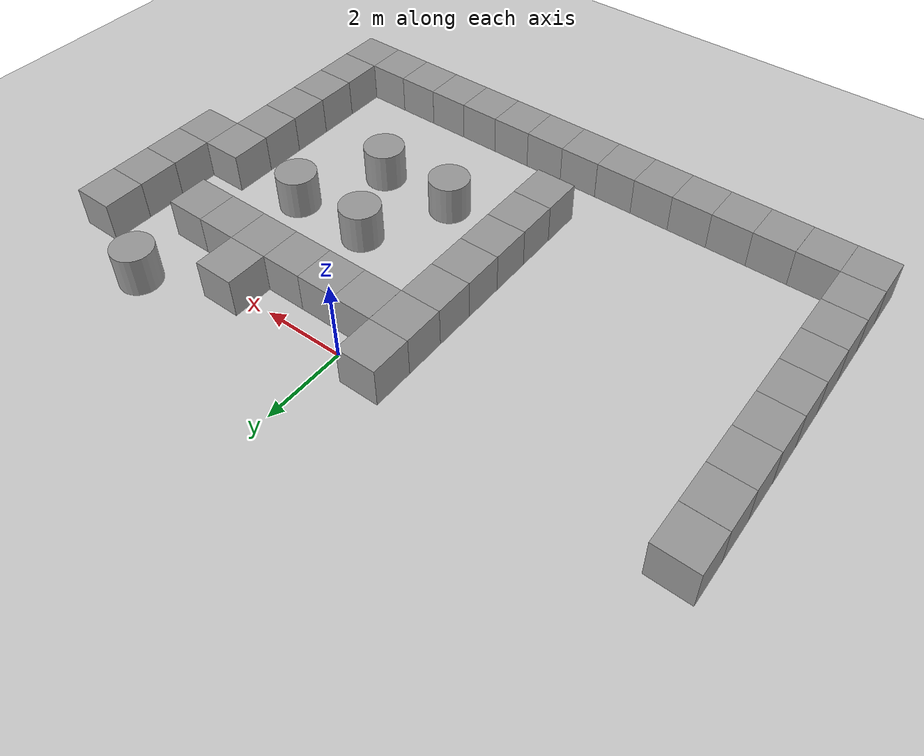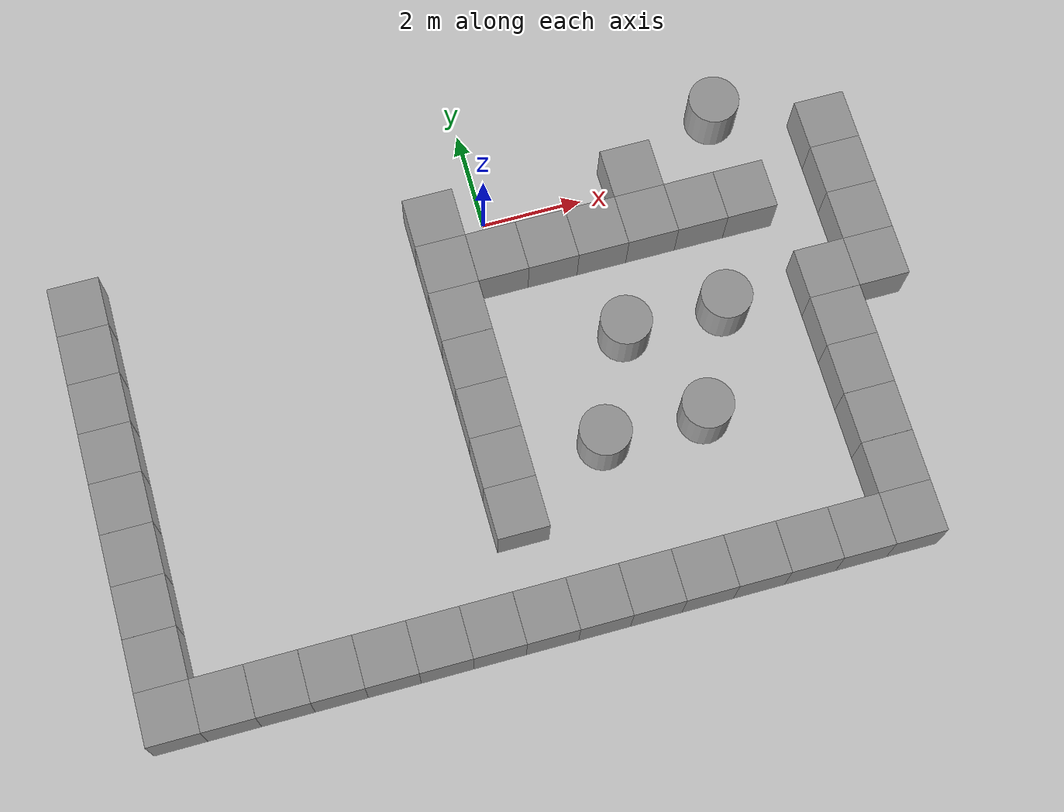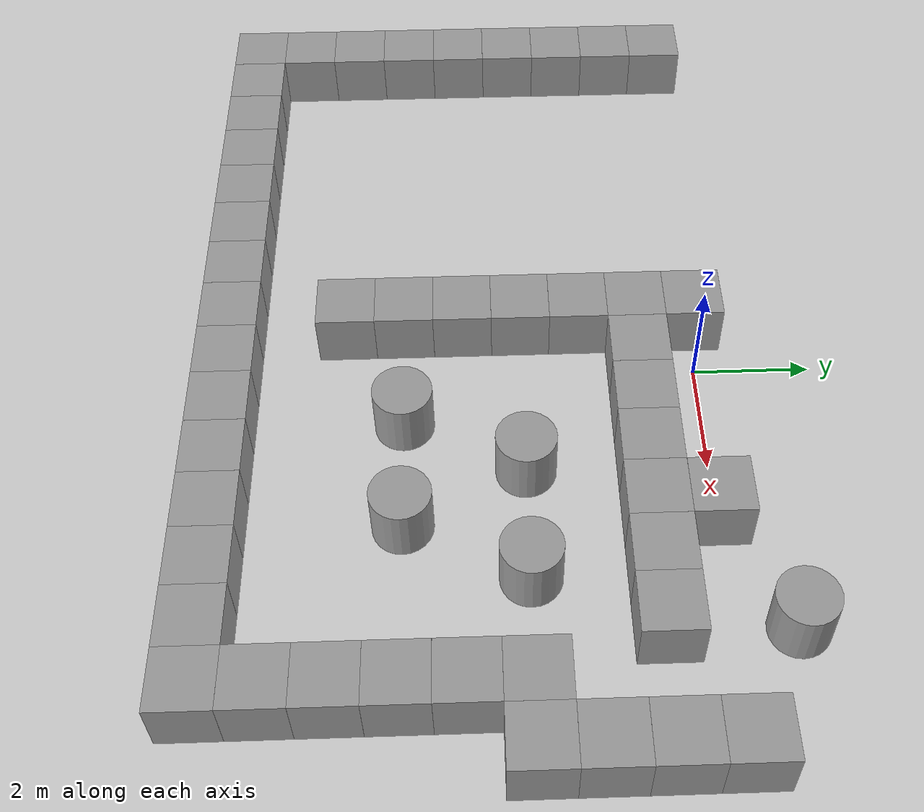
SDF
<sdf version="1.4">
 <world name="default">
  <model name="ground_plane">
   <static>1</static>
   <link name="link">
    <collision name="collision">
     <geometry><plane><normal>0 0 1</normal><size>100 100</size></plane></geometry>
     <surface><friction><ode><mu>100</mu><mu2>50</mu2></ode></friction></surface>
    </collision>
    <visual name="visual">
     <cast_shadows>0</cast_shadows>
     <geometry><plane><normal>0 0 1</normal><size>100 100</size></plane></geometry>
     <material>
      <script><uri>file://media/materials/scripts/gazebo.material</uri><name>Gazebo/Grey</name></script>
     </material>
    </visual>
    <velocity_decay><linear>0</linear><angular>0</angular></velocity_decay>
   </link>
  </model>
  <model name="unit_box_1">
   <pose>5e-06 -0.999881 0.5 0 0 -3.1e-05</pose>
   <link name="link">
    <inertial>
     <mass>1</mass>
     <inertia><ixx>1</ixx><ixy>0</ixy><ixz>0</ixz><iyy>1</iyy><iyz>0</iyz><izz>1</izz></inertia>
    </inertial>
    <collision name="collision"><geometry><box><size>1 1 1</size></box></geometry></collision>
    <visual name="visual">
     <geometry><box><size>1 1 1</size></box></geometry>
     <material>
      <script><uri>file://media/materials/scripts/gazebo.material</uri><name>Gazebo/Grey</name></script>
     </material>
    </visual>
    <velocity_decay><linear>0</linear><angular>0</angular></velocity_decay>
   </link>
   <static>0</static>
  </model>
  <model name="unit_box_2">
   <pose>1.00013 -1.00033 0.5 0 -0 3.1e-05</pose>
   <link name="link">
    <inertial>
     <mass>1</mass>
     <inertia><ixx>1</ixx><ixy>0</ixy><ixz>0</ixz><iyy>1</iyy><iyz>0</iyz><izz>1</izz></inertia>
    </inertial>
    <collision name="collision"><geometry><box><size>1 1 1</size></box></geometry></collision>
    <visual name="visual">
     <geometry><box><size>1 1 1</size></box></geometry>
     <material>
      <script><uri>file://media/materials/scripts/gazebo.material</uri><name>Gazebo/Grey</name></script>
     </material>
    </visual>
    <velocity_decay><linear>0</linear><angular>0</angular></velocity_decay>
   </link>
   <static>0</static>
  </model>
  <model name="unit_box_3">
   <pose>2.00013 -0.999965 0.5 0 -0 2.2e-05</pose>
   <link name="link">
    <inertial>
     <mass>1</mass>
     <inertia><ixx>1</ixx><ixy>0</ixy><ixz>0</ixz><iyy>1</iyy><iyz>0</iyz><izz>1</izz></inertia>
    </inertial>
    <collision name="collision"><geometry><box><size>1 1 1</size></box></geometry></collision>
    <visual name="visual">
     <geometry><box><size>1 1 1</size></box></geometry>
     <material>
      <script><uri>file://media/materials/scripts/gazebo.material</uri><name>Gazebo/Grey</name></script>
     </material>
    </visual>
    <velocity_decay><linear>0</linear><angular>0</angular></velocity_decay>
   </link>
   <static>0</static>
  </model>
  <model name="unit_box_4">
   <pose>3.00033 -1.00003 0.5 0 -0 0.000257</pose>
   <link name="link">
    <inertial>
     <mass>1</mass>
     <inertia><ixx>1</ixx><ixy>0</ixy><ixz>0</ixz><iyy>1</iyy><iyz>0</iyz><izz>1</izz></inertia>
    </inertial>
    <collision name="collision"><geometry><box><size>1 1 1</size></box></geometry></collision>
    <visual name="visual">
     <geometry><box><size>1 1 1</size></box></geometry>
     <material>
      <script><uri>file://media/materials/scripts/gazebo.material</uri><name>Gazebo/Grey</name></script>
     </material>
    </visual>
    <velocity_decay><linear>0</linear><angular>0</angular></velocity_decay>
   </link>
   <static>0</static>
  </model>
  <model name="unit_box_5">
   <pose>3.00021 6.2e-05 0.5 0 -0 0.000131</pose>
   <link name="link">
    <inertial>
     <mass>1</mass>
     <inertia><ixx>1</ixx><ixy>0</ixy><ixz>0</ixz><iyy>1</iyy><iyz>0</iyz><izz>1</izz></inertia>
    </inertial>
    <collision name="collision"><geometry><box><size>1 1 1</size></box></geometry></collision>
    <visual name="visual">
     <geometry><box><size>1 1 1</size></box></geometry>
     <material>
      <script><uri>file://media/materials/scripts/gazebo.material</uri><name>Gazebo/Grey</name></script>
     </material>
    </visual>
    <velocity_decay><linear>0</linear><angular>0</angular></velocity_decay>
   </link>
   <static>0</static>
  </model>
  <model name="unit_box_14">
   <pose>7.00006 0.000151 0.5 0 -0 1e-06</pose>
   <link name="link">
    <inertial>
     <mass>1</mass>
     <inertia><ixx>1</ixx><ixy>0</ixy><ixz>0</ixz><iyy>1</iyy><iyz>0</iyz><izz>1</izz></inertia>
    </inertial>
    <collision name="collision"><geometry><box><size>1 1 1</size></box></geometry></collision>
    <visual name="visual">
     <geometry><box><size>1 1 1</size></box></geometry>
     <material>
      <script><uri>file://media/materials/scripts/gazebo.material</uri><name>Gazebo/Grey</name></script>
     </material>
    </visual>
    <velocity_decay><linear>0</linear><angular>0</angular></velocity_decay>
   </link>
   <static>0</static>
  </model>
  <model name="unit_cylinder_1">
   <pose>5 1 0.49912 -0 -0 -0</pose>
   <link name="link">
    <inertial>
     <mass>1</mass>
     <inertia><ixx>1</ixx><ixy>0</ixy><ixz>0</ixz><iyy>1</iyy><iyz>0</iyz><izz>1</izz></inertia>
    </inertial>
    <collision name="collision">
     <geometry><cylinder><radius>0.5</radius><length>1</length></cylinder></geometry>
    </collision>
    <visual name="visual">
     <geometry><cylinder><radius>0.5</radius><length>1</length></cylinder></geometry>
     <material>
      <script><uri>file://media/materials/scripts/gazebo.material</uri><name>Gazebo/Grey</name></script>
     </material>
    </visual>
    <velocity_decay><linear>0</linear><angular>0</angular></velocity_decay>
   </link>
   <static>0</static>
  </model>
  <model name="unit_box_15">
   <pose>4.00045 -0.999873 0.5 0 -0 6e-06</pose>
   <link name="link">
    <inertial>
     <mass>1</mass>
     <inertia><ixx>1</ixx><ixy>0</ixy><ixz>0</ixz><iyy>1</iyy><iyz>0</iyz><izz>1</izz></inertia>
    </inertial>
    <collision name="collision"><geometry><box><size>1 1 1</size></box></geometry></collision>
    <visual name="visual">
     <geometry><box><size>1 1 1</size></box></geometry>
     <material>
      <script><uri>file://media/materials/scripts/gazebo.material</uri><name>Gazebo/Grey</name></script>
     </material>
    </visual>
    <velocity_decay><linear>0</linear><angular>0</angular></velocity_decay>
   </link>
   <static>0</static>
  </model>
  <model name="unit_box_16">
   <pose>5.00046 -1.00003 0.5 0 -0 1.5e-05</pose>
   <link name="link">
    <inertial>
     <mass>1</mass>
     <inertia><ixx>1</ixx><ixy>0</ixy><ixz>0</ixz><iyy>1</iyy><iyz>0</iyz><izz>1</izz></inertia>
    </inertial>
    <collision name="collision"><geometry><box><size>1 1 1</size></box></geometry></collision>
    <visual name="visual">
     <geometry><box><size>1 1 1</size></box></geometry>
     <material>
      <script><uri>file://media/materials/scripts/gazebo.material</uri><name>Gazebo/Grey</name></script>
     </material>
    </visual>
    <velocity_decay><linear>0</linear><angular>0</angular></velocity_decay>
   </link>
   <static>0</static>
  </model>
  <model name="unit_box_17">
   <pose>7.00035 -0.999923 0.5 0 -0 9.8e-05</pose>
   <link name="link">
    <inertial>
     <mass>1</mass>
     <inertia><ixx>1</ixx><ixy>0</ixy><ixz>0</ixz><iyy>1</iyy><iyz>0</iyz><izz>1</izz></inertia>
    </inertial>
    <collision name="collision"><geometry><box><size>1 1 1</size></box></geometry></collision>
    <visual name="visual">
     <geometry><box><size>1 1 1</size></box></geometry>
     <material>
      <script><uri>file://media/materials/scripts/gazebo.material</uri><name>Gazebo/Grey</name></script>
     </material>
    </visual>
    <velocity_decay><linear>0</linear><angular>0</angular></velocity_decay>
   </link>
   <static>0</static>
  </model>
  <model name="unit_box_23">
   <pose>-1.00047 9.5e-05 0.5 0 -0 -4.2e-05</pose>
   <link name="link">
    <inertial>
     <mass>1</mass>
     <inertia><ixx>1</ixx><ixy>0</ixy><ixz>0</ixz><iyy>1</iyy><iyz>0</iyz><izz>1</izz></inertia>
    </inertial>
    <collision name="collision"><geometry><box><size>1 1 1</size></box></geometry></collision>
    <visual name="visual">
     <geometry><box><size>1 1 1</size></box></geometry>
     <material>
      <script><uri>file://media/materials/scripts/gazebo.material</uri><name>Gazebo/Grey</name></script>
     </material>
    </visual>
    <velocity_decay><linear>0</linear><angular>0</angular></velocity_decay>
   </link>
   <static>0</static>
  </model>
  <model name="unit_box_24">
   <pose>-1.00037 -0.999916 0.5 -0 -0 -4.6e-05</pose>
   <link name="link">
    <inertial>
     <mass>1</mass>
     <inertia><ixx>1</ixx><ixy>0</ixy><ixz>0</ixz><iyy>1</iyy><iyz>0</iyz><izz>1</izz></inertia>
    </inertial>
    <collision name="collision"><geometry><box><size>1 1 1</size></box></geometry></collision>
    <visual name="visual">
     <geometry><box><size>1 1 1</size></box></geometry>
     <material>
      <script><uri>file://media/materials/scripts/gazebo.material</uri><name>Gazebo/Grey</name></script>
     </material>
    </visual>
    <velocity_decay><linear>0</linear><angular>0</angular></velocity_decay>
   </link>
   <static>0</static>
  </model>
  <model name="unit_box_44">
   <pose>6.99986 -1.99996 0.5 0 -0 0.000172</pose>
   <link name="link">
    <inertial>
     <mass>1</mass>
     <inertia><ixx>1</ixx><ixy>0</ixy><ixz>0</ixz><iyy>1</iyy><iyz>0</iyz><izz>1</izz></inertia>
    </inertial>
    <collision name="collision"><geometry><box><size>1 1 1</size></box></geometry></collision>
    <visual name="visual">
     <geometry><box><size>1 1 1</size></box></geometry>
     <material>
      <script><uri>file://media/materials/scripts/gazebo.material</uri><name>Gazebo/Grey</name></script>
     </material>
    </visual>
    <velocity_decay><linear>0</linear><angular>0</angular></velocity_decay>
   </link>
   <static>0</static>
  </model>
  <model name="unit_box_45">
   <pose>7.00008 -3.00005 0.5 0 -0 8e-05</pose>
   <link name="link">
    <inertial>
     <mass>1</mass>
     <inertia><ixx>1</ixx><ixy>0</ixy><ixz>0</ixz><iyy>1</iyy><iyz>0</iyz><izz>1</izz></inertia>
    </inertial>
    <collision name="collision"><geometry><box><size>1 1 1</size></box></geometry></collision>
    <visual name="visual">
     <geometry><box><size>1 1 1</size></box></geometry>
     <material>
      <script><uri>file://media/materials/scripts/gazebo.material</uri><name>Gazebo/Grey</name></script>
     </material>
    </visual>
    <velocity_decay><linear>0</linear><angular>0</angular></velocity_decay>
   </link>
   <static>0</static>
  </model>
  <model name="unit_box_59">
   <pose>5.99996 -2.99948 0.5 0 -0 8.8e-05</pose>
   <link name="link">
    <inertial>
     <mass>1</mass>
     <inertia><ixx>1</ixx><ixy>0</ixy><ixz>0</ixz><iyy>1</iyy><iyz>0</iyz><izz>1</izz></inertia>
    </inertial>
    <collision name="collision"><geometry><box><size>1 1 1</size></box></geometry></collision>
    <visual name="visual">
     <geometry><box><size>1 1 1</size></box></geometry>
     <material>
      <script><uri>file://media/materials/scripts/gazebo.material</uri><name>Gazebo/Grey</name></script>
     </material>
    </visual>
    <velocity_decay><linear>0</linear><angular>0</angular></velocity_decay>
   </link>
   <static>0</static>
  </model>
  <model name="unit_box_60">
   <pose>5.99974 -3.99959 0.5 -0 -0 -0.000124</pose>
   <link name="link">
    <inertial>
     <mass>1</mass>
     <inertia><ixx>1</ixx><ixy>0</ixy><ixz>0</ixz><iyy>1</iyy><iyz>0</iyz><izz>1</izz></inertia>
    </inertial>
    <collision name="collision"><geometry><box><size>1 1 1</size></box></geometry></collision>
    <visual name="visual">
     <geometry><box><size>1 1 1</size></box></geometry>
     <material>
      <script><uri>file://media/materials/scripts/gazebo.material</uri><name>Gazebo/Grey</name></script>
     </material>
    </visual>
    <velocity_decay><linear>0</linear><angular>0</angular></velocity_decay>
   </link>
   <static>0</static>
  </model>
  <model name="unit_box_61">
   <pose>6.00018 -4.99974 0.5 0 -0 -0.000116</pose>
   <link name="link">
    <inertial>
     <mass>1</mass>
     <inertia><ixx>1</ixx><ixy>0</ixy><ixz>0</ixz><iyy>1</iyy><iyz>0</iyz><izz>1</izz></inertia>
    </inertial>
    <collision name="collision"><geometry><box><size>1 1 1</size></box></geometry></collision>
    <visual name="visual">
     <geometry><box><size>1 1 1</size></box></geometry>
     <material>
      <script><uri>file://media/materials/scripts/gazebo.material</uri><name>Gazebo/Grey</name></script>
     </material>
    </visual>
    <velocity_decay><linear>0</linear><angular>0</angular></velocity_decay>
   </link>
   <static>0</static>
  </model>
  <model name="unit_box_62">
   <pose>6.00048 -5.99991 0.5 0 -0 0.000214</pose>
   <link name="link">
    <inertial>
     <mass>1</mass>
     <inertia><ixx>1</ixx><ixy>0</ixy><ixz>0</ixz><iyy>1</iyy><iyz>0</iyz><izz>1</izz></inertia>
    </inertial>
    <collision name="collision"><geometry><box><size>1 1 1</size></box></geometry></collision>
    <visual name="visual">
     <geometry><box><size>1 1 1</size></box></geometry>
     <material>
      <script><uri>file://media/materials/scripts/gazebo.material</uri><name>Gazebo/Grey</name></script>
     </material>
    </visual>
    <velocity_decay><linear>0</linear><angular>0</angular></velocity_decay>
   </link>
   <static>0</static>
  </model>
  <model name="unit_box_63">
   <pose>6.00055 -7.00006 0.5 0 -0 7e-05</pose>
   <link name="link">
    <inertial>
     <mass>1</mass>
     <inertia><ixx>1</ixx><ixy>0</ixy><ixz>0</ixz><iyy>1</iyy><iyz>0</iyz><izz>1</izz></inertia>
    </inertial>
    <collision name="collision"><geometry><box><size>1 1 1</size></box></geometry></collision>
    <visual name="visual">
     <geometry><box><size>1 1 1</size></box></geometry>
     <material>
      <script><uri>file://media/materials/scripts/gazebo.material</uri><name>Gazebo/Grey</name></script>
     </material>
    </visual>
    <velocity_decay><linear>0</linear><angular>0</angular></velocity_decay>
   </link>
   <static>0</static>
  </model>
  <model name="unit_box_64">
   <pose>6.00063 -8.00016 0.5 0 0 -0.000132</pose>
   <link name="link">
    <inertial>
     <mass>1</mass>
     <inertia><ixx>1</ixx><ixy>0</ixy><ixz>0</ixz><iyy>1</iyy><iyz>0</iyz><izz>1</izz></inertia>
    </inertial>
    <collision name="collision"><geometry><box><size>1 1 1</size></box></geometry></collision>
    <visual name="visual">
     <geometry><box><size>1 1 1</size></box></geometry>
     <material>
      <script><uri>file://media/materials/scripts/gazebo.material</uri><name>Gazebo/Grey</name></script>
     </material>
    </visual>
    <velocity_decay><linear>0</linear><angular>0</angular></velocity_decay>
   </link>
   <static>0</static>
  </model>
  <model name="unit_box_65">
   <pose>5.00063 -8.00035 0.5 0 -0 -0.000132</pose>
   <link name="link">
    <inertial>
     <mass>1</mass>
     <inertia><ixx>1</ixx><ixy>0</ixy><ixz>0</ixz><iyy>1</iyy><iyz>0</iyz><izz>1</izz></inertia>
    </inertial>
    <collision name="collision"><geometry><box><size>1 1 1</size></box></geometry></collision>
    <visual name="visual">
     <geometry><box><size>1 1 1</size></box></geometry>
     <material>
      <script><uri>file://media/materials/scripts/gazebo.material</uri><name>Gazebo/Grey</name></script>
     </material>
    </visual>
    <velocity_decay><linear>0</linear><angular>0</angular></velocity_decay>
   </link>
   <static>0</static>
  </model>
  <model name="unit_box_66">
   <pose>4.00054 -7.99937 0.5 0 -0 1.6e-05</pose>
   <link name="link">
    <inertial>
     <mass>1</mass>
     <inertia><ixx>1</ixx><ixy>0</ixy><ixz>0</ixz><iyy>1</iyy><iyz>0</iyz><izz>1</izz></inertia>
    </inertial>
    <collision name="collision"><geometry><box><size>1 1 1</size></box></geometry></collision>
    <visual name="visual">
     <geometry><box><size>1 1 1</size></box></geometry>
     <material>
      <script><uri>file://media/materials/scripts/gazebo.material</uri><name>Gazebo/Grey</name></script>
     </material>
    </visual>
    <velocity_decay><linear>0</linear><angular>0</angular></velocity_decay>
   </link>
   <static>0</static>
  </model>
  <model name="unit_box_67">
   <pose>-0.999492 -1.99993 0.5 0 0 -7.6e-05</pose>
   <link name="link">
    <inertial>
     <mass>1</mass>
     <inertia><ixx>1</ixx><ixy>0</ixy><ixz>0</ixz><iyy>1</iyy><iyz>0</iyz><izz>1</izz></inertia>
    </inertial>
    <collision name="collision"><geometry><box><size>1 1 1</size></box></geometry></collision>
    <visual name="visual">
     <geometry><box><size>1 1 1</size></box></geometry>
     <material>
      <script><uri>file://media/materials/scripts/gazebo.material</uri><name>Gazebo/Grey</name></script>
     </material>
    </visual>
    <velocity_decay><linear>0</linear><angular>0</angular></velocity_decay>
   </link>
   <static>0</static>
  </model>
  <model name="unit_box_68">
   <pose>-0.9997 -2.99997 0.5 0 -0 -9.4e-05</pose>
   <link name="link">
    <inertial>
     <mass>1</mass>
     <inertia><ixx>1</ixx><ixy>0</ixy><ixz>0</ixz><iyy>1</iyy><iyz>0</iyz><izz>1</izz></inertia>
    </inertial>
    <collision name="collision"><geometry><box><size>1 1 1</size></box></geometry></collision>
    <visual name="visual">
     <geometry><box><size>1 1 1</size></box></geometry>
     <material>
      <script><uri>file://media/materials/scripts/gazebo.material</uri><name>Gazebo/Grey</name></script>
     </material>
    </visual>
    <velocity_decay><linear>0</linear><angular>0</angular></velocity_decay>
   </link>
   <static>0</static>
  </model>
  <model name="unit_box_69">
   <pose>-0.999901 -4.00006 0.5 0 0 -8.7e-05</pose>
   <link name="link">
    <inertial>
     <mass>1</mass>
     <inertia><ixx>1</ixx><ixy>0</ixy><ixz>0</ixz><iyy>1</iyy><iyz>0</iyz><izz>1</izz></inertia>
    </inertial>
    <collision name="collision"><geometry><box><size>1 1 1</size></box></geometry></collision>
    <visual name="visual">
     <geometry><box><size>1 1 1</size></box></geometry>
     <material>
      <script><uri>file://media/materials/scripts/gazebo.material</uri><name>Gazebo/Grey</name></script>
     </material>
    </visual>
    <velocity_decay><linear>0</linear><angular>0</angular></velocity_decay>
   </link>
   <static>0</static>
  </model>
  <model name="unit_box_70">
   <pose>-0.999723 -5.00009 0.5 0 0 -0.000119</pose>
   <link name="link">
    <inertial>
     <mass>1</mass>
     <inertia><ixx>1</ixx><ixy>0</ixy><ixz>0</ixz><iyy>1</iyy><iyz>0</iyz><izz>1</izz></inertia>
    </inertial>
    <collision name="collision"><geometry><box><size>1 1 1</size></box></geometry></collision>
    <visual name="visual">
     <geometry><box><size>1 1 1</size></box></geometry>
     <material>
      <script><uri>file://media/materials/scripts/gazebo.material</uri><name>Gazebo/Grey</name></script>
     </material>
    </visual>
    <velocity_decay><linear>0</linear><angular>0</angular></velocity_decay>
   </link>
   <static>0</static>
  </model>
  <model name="unit_box_71">
   <pose>3.00034 -7.99992 0.5 0 0 -0.000136</pose>
   <link name="link">
    <inertial>
     <mass>1</mass>
     <inertia><ixx>1</ixx><ixy>0</ixy><ixz>0</ixz><iyy>1</iyy><iyz>0</iyz><izz>1</izz></inertia>
    </inertial>
    <collision name="collision"><geometry><box><size>1 1 1</size></box></geometry></collision>
    <visual name="visual">
     <geometry><box><size>1 1 1</size></box></geometry>
     <material>
      <script><uri>file://media/materials/scripts/gazebo.material</uri><name>Gazebo/Grey</name></script>
     </material>
    </visual>
    <velocity_decay><linear>0</linear><angular>0</angular></velocity_decay>
   </link>
   <static>0</static>
  </model>
  <model name="unit_box_72">
   <pose>2.00026 -7.9999 0.5 0 -0 1.6e-05</pose>
   <link name="link">
    <inertial>
     <mass>1</mass>
     <inertia><ixx>1</ixx><ixy>0</ixy><ixz>0</ixz><iyy>1</iyy><iyz>0</iyz><izz>1</izz></inertia>
    </inertial>
    <collision name="collision"><geometry><box><size>1 1 1</size></box></geometry></collision>
    <visual name="visual">
     <geometry><box><size>1 1 1</size></box></geometry>
     <material>
      <script><uri>file://media/materials/scripts/gazebo.material</uri><name>Gazebo/Grey</name></script>
     </material>
    </visual>
    <velocity_decay><linear>0</linear><angular>0</angular></velocity_decay>
   </link>
   <static>0</static>
  </model>
  <model name="unit_box_73">
   <pose>-0.99989 -6.00013 0.5 0 0 -0.000179</pose>
   <link name="link">
    <inertial>
     <mass>1</mass>
     <inertia><ixx>1</ixx><ixy>0</ixy><ixz>0</ixz><iyy>1</iyy><iyz>0</iyz><izz>1</izz></inertia>
    </inertial>
    <collision name="collision"><geometry><box><size>1 1 1</size></box></geometry></collision>
    <visual name="visual">
     <geometry><box><size>1 1 1</size></box></geometry>
     <material>
      <script><uri>file://media/materials/scripts/gazebo.material</uri><name>Gazebo/Grey</name></script>
     </material>
    </visual>
    <velocity_decay><linear>0</linear><angular>0</angular></velocity_decay>
   </link>
   <static>0</static>
  </model>
  <model name="unit_box_74">
   <pose>1.00021 -7.99986 0.5 0 -0 1.7e-05</pose>
   <link name="link">
    <inertial>
     <mass>1</mass>
     <inertia><ixx>1</ixx><ixy>0</ixy><ixz>0</ixz><iyy>1</iyy><iyz>0</iyz><izz>1</izz></inertia>
    </inertial>
    <collision name="collision"><geometry><box><size>1 1 1</size></box></geometry></collision>
    <visual name="visual">
     <geometry><box><size>1 1 1</size></box></geometry>
     <material>
      <script><uri>file://media/materials/scripts/gazebo.material</uri><name>Gazebo/Grey</name></script>
     </material>
    </visual>
    <velocity_decay><linear>0</linear><angular>0</angular></velocity_decay>
   </link>
   <static>0</static>
  </model>
  <model name="unit_box_75">
   <pose>0.000214 -7.99971 0.5 0 -0 1.8e-05</pose>
   <link name="link">
    <inertial>
     <mass>1</mass>
     <inertia><ixx>1</ixx><ixy>0</ixy><ixz>0</ixz><iyy>1</iyy><iyz>0</iyz><izz>1</izz></inertia>
    </inertial>
    <collision name="collision"><geometry><box><size>1 1 1</size></box></geometry></collision>
    <visual name="visual">
     <geometry><box><size>1 1 1</size></box></geometry>
     <material>
      <script><uri>file://media/materials/scripts/gazebo.material</uri><name>Gazebo/Grey</name></script>
     </material>
    </visual>
    <velocity_decay><linear>0</linear><angular>0</angular></velocity_decay>
   </link>
   <static>0</static>
  </model>
  <model name="unit_box_76">
   <pose>-0.999825 -7.99962 0.5 0 -0 1.5e-05</pose>
   <link name="link">
    <inertial>
     <mass>1</mass>
     <inertia><ixx>1</ixx><ixy>0</ixy><ixz>0</ixz><iyy>1</iyy><iyz>0</iyz><izz>1</izz></inertia>
    </inertial>
    <collision name="collision"><geometry><box><size>1 1 1</size></box></geometry></collision>
    <visual name="visual">
     <geometry><box><size>1 1 1</size></box></geometry>
     <material>
      <script><uri>file://media/materials/scripts/gazebo.material</uri><name>Gazebo/Grey</name></script>
     </material>
    </visual>
    <velocity_decay><linear>0</linear><angular>0</angular></velocity_decay>
   </link>
   <static>0</static>
  </model>
  <model name="unit_cylinder_2">
   <pose>4 -3 0.49912 -0 -0 -0</pose>
   <link name="link">
    <inertial>
     <mass>1</mass>
     <inertia><ixx>1</ixx><ixy>0</ixy><ixz>0</ixz><iyy>1</iyy><iyz>0</iyz><izz>1</izz></inertia>
    </inertial>
    <collision name="collision">
     <geometry><cylinder><radius>0.5</radius><length>1</length></cylinder></geometry>
    </collision>
    <visual name="visual">
     <geometry><cylinder><radius>0.5</radius><length>1</length></cylinder></geometry>
     <material>
      <script><uri>file://media/materials/scripts/gazebo.material</uri><name>Gazebo/Grey</name></script>
     </material>
    </visual>
    <velocity_decay><linear>0</linear><angular>0</angular></velocity_decay>
   </link>
   <static>0</static>
  </model>
  <model name="unit_cylinder_3">
   <pose>3 -5 0.49912 -0 -0 -0</pose>
   <link name="link">
    <inertial>
     <mass>1</mass>
     <inertia><ixx>1</ixx><ixy>0</ixy><ixz>0</ixz><iyy>1</iyy><iyz>0</iyz><izz>1</izz></inertia>
    </inertial>
    <collision name="collision">
     <geometry><cylinder><radius>0.5</radius><length>1</length></cylinder></geometry>
    </collision>
    <visual name="visual">
     <geometry><cylinder><radius>0.5</radius><length>1</length></cylinder></geometry>
     <material>
      <script><uri>file://media/materials/scripts/gazebo.material</uri><name>Gazebo/Grey</name></script>
     </material>
    </visual>
    <velocity_decay><linear>0</linear><angular>0</angular></velocity_decay>
   </link>
   <static>0</static>
  </model>
  <model name="unit_cylinder_4">
   <pose>2 -3 0.49912 -0 -0 -0</pose>
   <link name="link">
    <inertial>
     <mass>1</mass>
     <inertia><ixx>1</ixx><ixy>0</ixy><ixz>0</ixz><iyy>1</iyy><iyz>0</iyz><izz>1</izz></inertia>
    </inertial>
    <collision name="collision">
     <geometry><cylinder><radius>0.5</radius><length>1</length></cylinder></geometry>
    </collision>
    <visual name="visual">
     <geometry><cylinder><radius>0.5</radius><length>1</length></cylinder></geometry>
     <material>
      <script><uri>file://media/materials/scripts/gazebo.material</uri><name>Gazebo/Grey</name></script>
     </material>
    </visual>
    <velocity_decay><linear>0</linear><angular>0</angular></velocity_decay>
   </link>
   <static>0</static>
  </model>
  <model name="unit_cylinder_5">
   <pose>1 -5 0.49912 -0 -0 -0</pose>
   <link name="link">
    <inertial>
     <mass>1</mass>
     <inertia><ixx>1</ixx><ixy>0</ixy><ixz>0</ixz><iyy>1</iyy><iyz>0</iyz><izz>1</izz></inertia>
    </inertial>
    <collision name="collision">
     <geometry><cylinder><radius>0.5</radius><length>1</length></cylinder></geometry>
    </collision>
    <visual name="visual">
     <geometry><cylinder><radius>0.5</radius><length>1</length></cylinder></geometry>
     <material>
      <script><uri>file://media/materials/scripts/gazebo.material</uri><name>Gazebo/Grey</name></script>
     </material>
    </visual>
    <velocity_decay><linear>0</linear><angular>0</angular></velocity_decay>
   </link>
   <static>0</static>
  </model>
  <model name="unit_box_77">
   <pose>-1.99992 -8.00007 0.5 0 0 -1.7e-05</pose>
   <link name="link">
    <inertial>
     <mass>1</mass>
     <inertia><ixx>1</ixx><ixy>0</ixy><ixz>0</ixz><iyy>1</iyy><iyz>0</iyz><izz>1</izz></inertia>
    </inertial>
    <collision name="collision"><geometry><box><size>1 1 1</size></box></geometry></collision>
    <visual name="visual">
     <geometry><box><size>1 1 1</size></box></geometry>
     <material>
      <script><uri>file://media/materials/scripts/gazebo.material</uri><name>Gazebo/Grey</name></script>
     </material>
    </visual>
    <velocity_decay><linear>0</linear><angular>0</angular></velocity_decay>
   </link>
   <static>0</static>
  </model>
  <model name="unit_box_78">
   <pose>-2.99992 -7.99999 0.5 0 -0 -1.7e-05</pose>
   <link name="link">
    <inertial>
     <mass>1</mass>
     <inertia><ixx>1</ixx><ixy>0</ixy><ixz>0</ixz><iyy>1</iyy><iyz>0</iyz><izz>1</izz></inertia>
    </inertial>
    <collision name="collision"><geometry><box><size>1 1 1</size></box></geometry></collision>
    <visual name="visual">
     <geometry><box><size>1 1 1</size></box></geometry>
     <material>
      <script><uri>file://media/materials/scripts/gazebo.material</uri><name>Gazebo/Grey</name></script>
     </material>
    </visual>
    <velocity_decay><linear>0</linear><angular>0</angular></velocity_decay>
   </link>
   <static>0</static>
  </model>
  <model name="unit_box_79">
   <pose>-4 -8.00012 0.5 0 -0 -3.9e-05</pose>
   <link name="link">
    <inertial>
     <mass>1</mass>
     <inertia><ixx>1</ixx><ixy>0</ixy><ixz>0</ixz><iyy>1</iyy><iyz>0</iyz><izz>1</izz></inertia>
    </inertial>
    <collision name="collision"><geometry><box><size>1 1 1</size></box></geometry></collision>
    <visual name="visual">
     <geometry><box><size>1 1 1</size></box></geometry>
     <material>
      <script><uri>file://media/materials/scripts/gazebo.material</uri><name>Gazebo/Grey</name></script>
     </material>
    </visual>
    <velocity_decay><linear>0</linear><angular>0</angular></velocity_decay>
   </link>
   <static>0</static>
  </model>
  <model name="unit_box_80">
   <pose>-5.00012 -8.00001 0.5 0 -0 9e-06</pose>
   <link name="link">
    <inertial>
     <mass>1</mass>
     <inertia><ixx>1</ixx><ixy>0</ixy><ixz>0</ixz><iyy>1</iyy><iyz>0</iyz><izz>1</izz></inertia>
    </inertial>
    <collision name="collision"><geometry><box><size>1 1 1</size></box></geometry></collision>
    <visual name="visual">
     <geometry><box><size>1 1 1</size></box></geometry>
     <material>
      <script><uri>file://media/materials/scripts/gazebo.material</uri><name>Gazebo/Grey</name></script>
     </material>
    </visual>
    <velocity_decay><linear>0</linear><angular>0</angular></velocity_decay>
   </link>
   <static>0</static>
  </model>
  <model name="unit_box_81">
   <pose>-6.00023 -7.99987 0.5 0 -0 4.6e-05</pose>
   <link name="link">
    <inertial>
     <mass>1</mass>
     <inertia><ixx>1</ixx><ixy>0</ixy><ixz>0</ixz><iyy>1</iyy><iyz>0</iyz><izz>1</izz></inertia>
    </inertial>
    <collision name="collision"><geometry><box><size>1 1 1</size></box></geometry></collision>
    <visual name="visual">
     <geometry><box><size>1 1 1</size></box></geometry>
     <material>
      <script><uri>file://media/materials/scripts/gazebo.material</uri><name>Gazebo/Grey</name></script>
     </material>
    </visual>
    <velocity_decay><linear>0</linear><angular>0</angular></velocity_decay>
   </link>
   <static>0</static>
  </model>
  <model name="unit_box_82">
   <pose>-7.00074 -7.99971 0.5 0 -0 0.000598</pose>
   <link name="link">
    <inertial>
     <mass>1</mass>
     <inertia><ixx>1</ixx><ixy>0</ixy><ixz>0</ixz><iyy>1</iyy><iyz>0</iyz><izz>1</izz></inertia>
    </inertial>
    <collision name="collision"><geometry><box><size>1 1 1</size></box></geometry></collision>
    <visual name="visual">
     <geometry><box><size>1 1 1</size></box></geometry>
     <material>
      <script><uri>file://media/materials/scripts/gazebo.material</uri><name>Gazebo/Grey</name></script>
     </material>
    </visual>
    <velocity_decay><linear>0</linear><angular>0</angular></velocity_decay>
   </link>
   <static>0</static>
  </model>
  <model name="unit_box_83">
   <pose>-8.00088 -8.00022 0.5 0 -0 0.000403</pose>
   <link name="link">
    <inertial>
     <mass>1</mass>
     <inertia><ixx>1</ixx><ixy>0</ixy><ixz>0</ixz><iyy>1</iyy><iyz>0</iyz><izz>1</izz></inertia>
    </inertial>
    <collision name="collision"><geometry><box><size>1 1 1</size></box></geometry></collision>
    <visual name="visual">
     <geometry><box><size>1 1 1</size></box></geometry>
     <material>
      <script><uri>file://media/materials/scripts/gazebo.material</uri><name>Gazebo/Grey</name></script>
     </material>
    </visual>
    <velocity_decay><linear>0</linear><angular>0</angular></velocity_decay>
   </link>
   <static>0</static>
  </model>
  <model name="unit_box_84">
   <pose>-8.00004 -7.00021 0.5 0 -0 0.000404</pose>
   <link name="link">
    <inertial>
     <mass>1</mass>
     <inertia><ixx>1</ixx><ixy>0</ixy><ixz>0</ixz><iyy>1</iyy><iyz>0</iyz><izz>1</izz></inertia>
    </inertial>
    <collision name="collision"><geometry><box><size>1 1 1</size></box></geometry></collision>
    <visual name="visual">
     <geometry><box><size>1 1 1</size></box></geometry>
     <material>
      <script><uri>file://media/materials/scripts/gazebo.material</uri><name>Gazebo/Grey</name></script>
     </material>
    </visual>
    <velocity_decay><linear>0</linear><angular>0</angular></velocity_decay>
   </link>
   <static>0</static>
  </model>
  <model name="unit_box_85">
   <pose>-7.9996 -6.00007 0.5 0 -0 0.000354</pose>
   <link name="link">
    <inertial>
     <mass>1</mass>
     <inertia><ixx>1</ixx><ixy>0</ixy><ixz>0</ixz><iyy>1</iyy><iyz>0</iyz><izz>1</izz></inertia>
    </inertial>
    <collision name="collision"><geometry><box><size>1 1 1</size></box></geometry></collision>
    <visual name="visual">
     <geometry><box><size>1 1 1</size></box></geometry>
     <material>
      <script><uri>file://media/materials/scripts/gazebo.material</uri><name>Gazebo/Grey</name></script>
     </material>
    </visual>
    <velocity_decay><linear>0</linear><angular>0</angular></velocity_decay>
   </link>
   <static>0</static>
  </model>
  <model name="unit_box_86">
   <pose>-8.00027 -5.00006 0.5 0 -0 0.000332</pose>
   <link name="link">
    <inertial>
     <mass>1</mass>
     <inertia><ixx>1</ixx><ixy>0</ixy><ixz>0</ixz><iyy>1</iyy><iyz>0</iyz><izz>1</izz></inertia>
    </inertial>
    <collision name="collision"><geometry><box><size>1 1 1</size></box></geometry></collision>
    <visual name="visual">
     <geometry><box><size>1 1 1</size></box></geometry>
     <material>
      <script><uri>file://media/materials/scripts/gazebo.material</uri><name>Gazebo/Grey</name></script>
     </material>
    </visual>
    <velocity_decay><linear>0</linear><angular>0</angular></velocity_decay>
   </link>
   <static>0</static>
  </model>
  <model name="unit_box_87">
   <pose>-8.00053 -4.00004 0.5 0 -0 0.000312</pose>
   <link name="link">
    <inertial>
     <mass>1</mass>
     <inertia><ixx>1</ixx><ixy>0</ixy><ixz>0</ixz><iyy>1</iyy><iyz>0</iyz><izz>1</izz></inertia>
    </inertial>
    <collision name="collision"><geometry><box><size>1 1 1</size></box></geometry></collision>
    <visual name="visual">
     <geometry><box><size>1 1 1</size></box></geometry>
     <material>
      <script><uri>file://media/materials/scripts/gazebo.material</uri><name>Gazebo/Grey</name></script>
     </material>
    </visual>
    <velocity_decay><linear>0</linear><angular>0</angular></velocity_decay>
   </link>
   <static>0</static>
  </model>
  <model name="unit_box_88">
   <pose>-8.00105 -3.00001 0.5 0 -0 0.000309</pose>
   <link name="link">
    <inertial>
     <mass>1</mass>
     <inertia><ixx>1</ixx><ixy>0</ixy><ixz>0</ixz><iyy>1</iyy><iyz>0</iyz><izz>1</izz></inertia>
    </inertial>
    <collision name="collision"><geometry><box><size>1 1 1</size></box></geometry></collision>
    <visual name="visual">
     <geometry><box><size>1 1 1</size></box></geometry>
     <material>
      <script><uri>file://media/materials/scripts/gazebo.material</uri><name>Gazebo/Grey</name></script>
     </material>
    </visual>
    <velocity_decay><linear>0</linear><angular>0</angular></velocity_decay>
   </link>
   <static>0</static>
  </model>
  <model name="unit_box_89">
   <pose>-7.99878 -2.00001 0.5 0 -0 0.000315</pose>
   <link name="link">
    <inertial>
     <mass>1</mass>
     <inertia><ixx>1</ixx><ixy>0</ixy><ixz>0</ixz><iyy>1</iyy><iyz>0</iyz><izz>1</izz></inertia>
    </inertial>
    <collision name="collision"><geometry><box><size>1 1 1</size></box></geometry></collision>
    <visual name="visual">
     <geometry><box><size>1 1 1</size></box></geometry>
     <material>
      <script><uri>file://media/materials/scripts/gazebo.material</uri><name>Gazebo/Grey</name></script>
     </material>
    </visual>
    <velocity_decay><linear>0</linear><angular>0</angular></velocity_decay>
   </link>
   <static>0</static>
  </model>
  <model name="unit_box_90">
   <pose>-7.99878 -0.999959 0.5 0 -0 0.000219</pose>
   <link name="link">
    <inertial>
     <mass>1</mass>
     <inertia><ixx>1</ixx><ixy>0</ixy><ixz>0</ixz><iyy>1</iyy><iyz>0</iyz><izz>1</izz></inertia>
    </inertial>
    <collision name="collision"><geometry><box><size>1 1 1</size></box></geometry></collision>
    <visual name="visual">
     <geometry><box><size>1 1 1</size></box></geometry>
     <material>
      <script><uri>file://media/materials/scripts/gazebo.material</uri><name>Gazebo/Grey</name></script>
     </material>
    </visual>
    <velocity_decay><linear>0</linear><angular>0</angular></velocity_decay>
   </link>
   <static>0</static>
  </model>
  <model name="unit_box_91">
   <pose>-7.99895 0.000173 0.499069 4.1359e-25 -0.000113 -1.9e-05</pose>
   <link name="link">
    <inertial>
     <mass>1</mass>
     <inertia><ixx>1</ixx><ixy>0</ixy><ixz>0</ixz><iyy>1</iyy><iyz>0</iyz><izz>1</izz></inertia>
    </inertial>
    <collision name="collision"><geometry><box><size>1 1 1</size></box></geometry></collision>
    <visual name="visual">
     <geometry><box><size>1 1 1</size></box></geometry>
     <material>
      <script><uri>file://media/materials/scripts/gazebo.material</uri><name>Gazebo/Grey</name></script>
     </material>
    </visual>
    <velocity_decay><linear>0</linear><angular>0</angular></velocity_decay>
   </link>
   <static>0</static>
  </model>
 </world>
</sdf>
